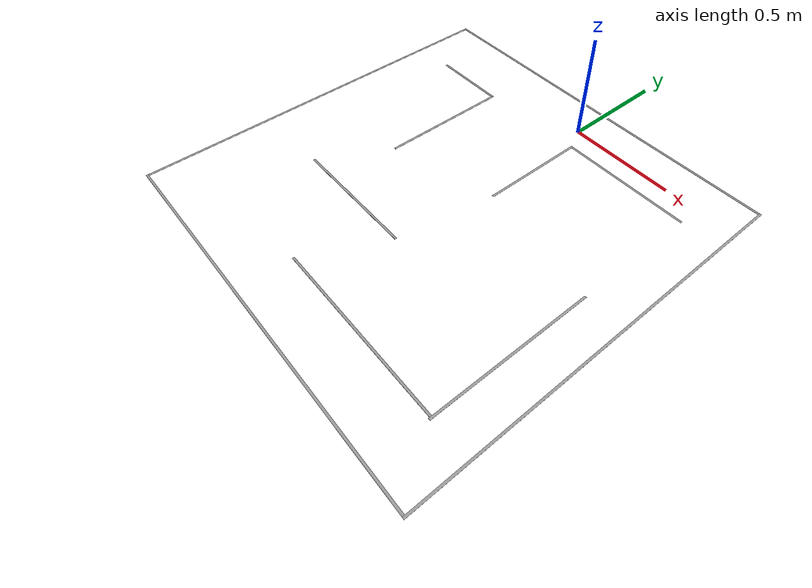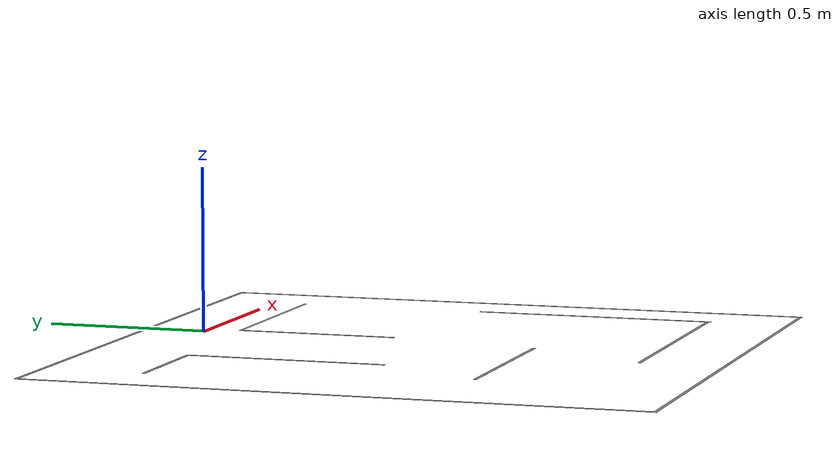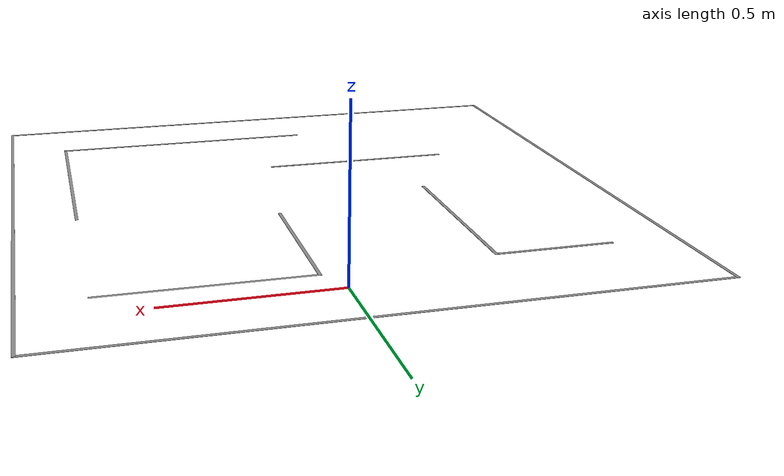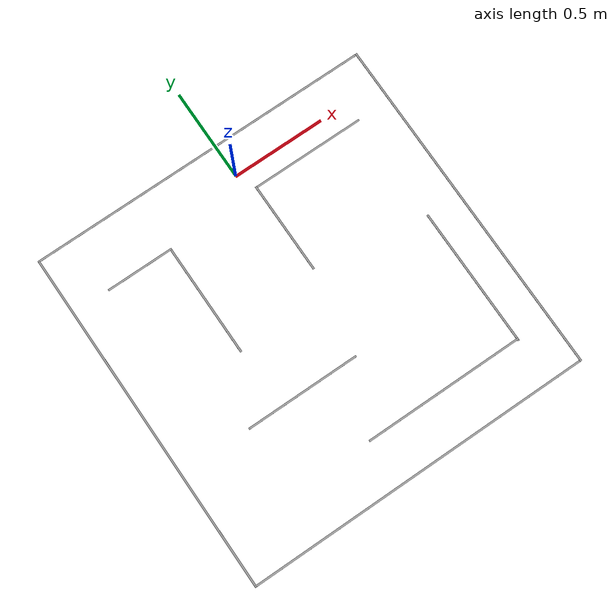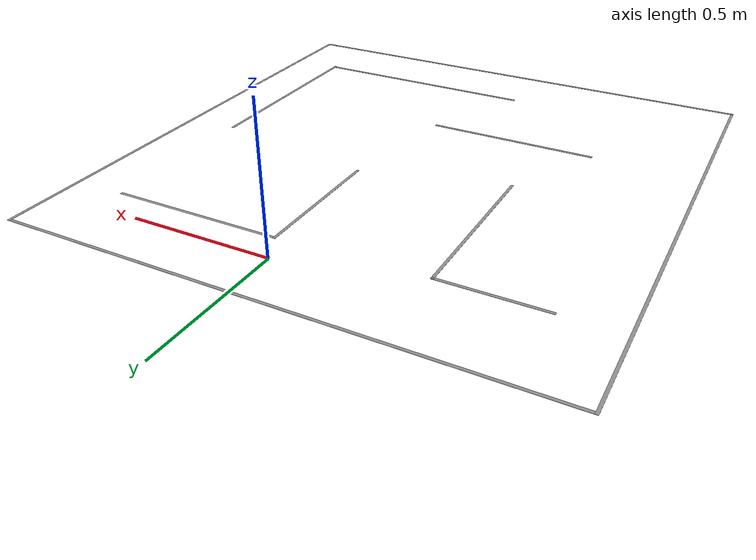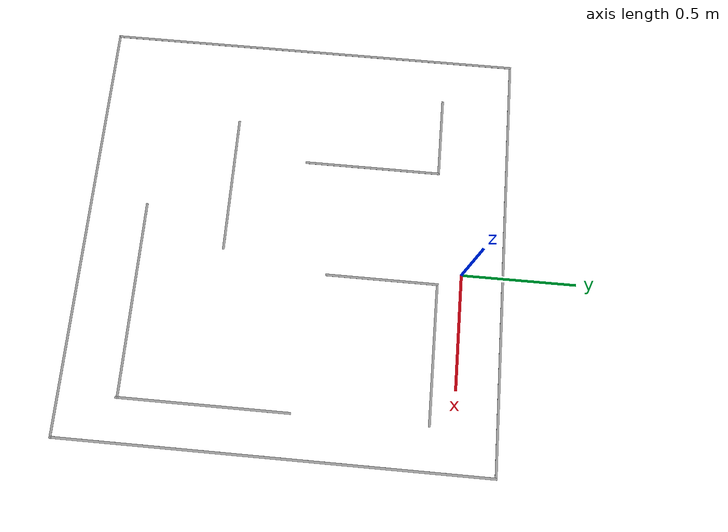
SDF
<?xml version='1.0'?>
<sdf version='1.7'>
  <model name='model_maze'>
    <model name='maze_01'>
      <pose>-0 0 0 0 -0 0</pose>
      <link name='Wall_10'>
        <collision name='Wall_10_Collision'>
          <geometry>
            <box>
              <size>1.86 0.01 0.001</size>
            </box>
          </geometry>
          <pose>0 0 0.0005 0 -0 0</pose>
        </collision>
        <visual name='Wall_10_Visual'>
          <pose>0 0 0.0005 0 -0 0</pose>
          <geometry>
            <box>
              <size>1.86 0.01 0.001</size>
            </box>
          </geometry>
          <material>
            <script>
              <uri>file://media/materials/scripts/gazebo.material</uri>
              <name>Gazebo/Grey</name>
            </script>
            <ambient>1 1 1 1</ambient>
          </material>
          <meta>
            <layer>0</layer>
          </meta>
        </visual>
        <pose>-1.0125 -0.7425 0 0 -0 1.5708</pose>
      </link>
      <link name='Wall_12'>
        <collision name='Wall_12_Collision'>
          <geometry>
            <box>
              <size>0.360287 0.01 0.001</size>
            </box>
          </geometry>
          <pose>0 0 0.0005 0 -0 0</pose>
        </collision>
        <visual name='Wall_12_Visual'>
          <pose>0 0 0.0005 0 -0 0</pose>
          <geometry>
            <box>
              <size>0.360287 0.01 0.001</size>
            </box>
          </geometry>
          <material>
            <script>
              <uri>file://media/materials/scripts/gazebo.material</uri>
              <name>Gazebo/Grey</name>
            </script>
            <ambient>1 1 1 1</ambient>
          </material>
          <meta>
            <layer>0</layer>
          </meta>
        </visual>
        <pose>-0.6345 -0.1235 0 0 -0 0</pose>
      </link>
      <link name='Wall_13'>
        <collision name='Wall_13_Collision'>
          <geometry>
            <box>
              <size>0.60959 0.01 0.001</size>
            </box>
          </geometry>
          <pose>0 0 0.0005 0 -0 0</pose>
        </collision>
        <visual name='Wall_13_Visual'>
          <pose>0 0 0.0005 0 -0 0</pose>
          <geometry>
            <box>
              <size>0.60959 0.01 0.001</size>
            </box>
          </geometry>
          <material>
            <script>
              <uri>file://media/materials/scripts/gazebo.material</uri>
              <name>Gazebo/Grey</name>
            </script>
            <ambient>1 1 1 1</ambient>
          </material>
          <meta>
            <layer>0</layer>
          </meta>
        </visual>
        <pose>-0.4595 -0.4235 0 0 -0 -1.5708</pose>
      </link>
      <link name='Wall_15'>
        <collision name='Wall_15_Collision'>
          <geometry>
            <box>
              <size>0.86 0.01 0.001</size>
            </box>
          </geometry>
          <pose>0 0 0.0005 0 -0 0</pose>
        </collision>
        <visual name='Wall_15_Visual'>
          <pose>0 0 0.0005 0 -0 0</pose>
          <geometry>
            <box>
              <size>0.86 0.01 0.001</size>
            </box>
          </geometry>
          <material>
            <script>
              <uri>file://media/materials/scripts/gazebo.material</uri>
              <name>Gazebo/Grey</name>
            </script>
            <ambient>1 1 1 1</ambient>
          </material>
          <meta>
            <layer>0</layer>
          </meta>
        </visual>
        <pose>0.227213 -1.41605 0 0 -0 0</pose>
      </link>
      <link name='Wall_18'>
        <collision name='Wall_18_Collision'>
          <geometry>
            <box>
              <size>0.61 0.01 0.001</size>
            </box>
          </geometry>
          <pose>0 0 0.0005 0 -0 0</pose>
        </collision>
        <visual name='Wall_18_Visual'>
          <pose>0 0 0.0005 0 -0 0</pose>
          <geometry>
            <box>
              <size>0.61 0.01 0.001</size>
            </box>
          </geometry>
          <material>
            <script>
              <uri>file://media/materials/scripts/gazebo.material</uri>
              <name>Gazebo/Grey</name>
            </script>
            <ambient>1 1 1 1</ambient>
          </material>
          <meta>
            <layer>0</layer>
          </meta>
        </visual>
        <pose>-0.328904 -1.051 0 0 -0 0</pose>
      </link>
      <link name='Wall_20'>
        <collision name='Wall_20_Collision'>
          <geometry>
            <box>
              <size>0.745 0.01 0.001</size>
            </box>
          </geometry>
          <pose>0 0 0.0005 0 -0 0</pose>
        </collision>
        <visual name='Wall_20_Visual'>
          <pose>0 0 0.0005 0 -0 0</pose>
          <geometry>
            <box>
              <size>0.745 0.01 0.001</size>
            </box>
          </geometry>
          <material>
            <script>
              <uri>file://media/materials/scripts/gazebo.material</uri>
              <name>Gazebo/Grey</name>
            </script>
            <ambient>1 1 1 1</ambient>
          </material>
          <meta>
            <layer>0</layer>
          </meta>
        </visual>
        <pose>0.652213 -1.05352 0 0 -0 1.5708</pose>
      </link>
      <link name='Wall_22'>
        <collision name='Wall_22_Collision'>
          <geometry>
            <box>
              <size>0.495 0.01 0.001</size>
            </box>
          </geometry>
          <pose>0 0 0.0005 0 -0 0</pose>
        </collision>
        <visual name='Wall_22_Visual'>
          <pose>0 0 0.0005 0 -0 0</pose>
          <geometry>
            <box>
              <size>0.495 0.01 0.001</size>
            </box>
          </geometry>
          <material>
            <script>
              <uri>file://media/materials/scripts/gazebo.material</uri>
              <name>Gazebo/Grey</name>
            </script>
            <ambient>1 1 1 1</ambient>
          </material>
          <meta>
            <layer>0</layer>
          </meta>
        </visual>
        <pose>0.0505 -0.344 0 0 -0 1.5708</pose>
      </link>
      <link name='Wall_23'>
        <collision name='Wall_23_Collision'>
          <geometry>
            <box>
              <size>0.61 0.01 0</size>
            </box>
          </geometry>
          <pose>0 0 0.0005 0 -0 0</pose>
        </collision>
        <visual name='Wall_23_Visual'>
          <pose>0 0 0.0005 0 -0 0</pose>
          <geometry>
            <box>
              <size>0.61 0.01 0</size>
            </box>
          </geometry>
          <material>
            <script>
              <uri>file://media/materials/scripts/gazebo.material</uri>
              <name>Gazebo/Grey</name>
            </script>
            <ambient>1 1 1 1</ambient>
          </material>
          <meta>
            <layer>0</layer>
          </meta>
        </visual>
        <pose>0.3505 -0.1015 0 0 -0 0</pose>
      </link>
      <link name='Wall_7'>
        <collision name='Wall_7_Collision'>
          <geometry>
            <box>
              <size>1.86 0.01 0.001</size>
            </box>
          </geometry>
          <pose>0 0 0.0005 0 -0 0</pose>
        </collision>
        <visual name='Wall_7_Visual'>
          <pose>0 0 0.0005 0 -0 0</pose>
          <geometry>
            <box>
              <size>1.86 0.01 0.001</size>
            </box>
          </geometry>
          <material>
            <script>
              <uri>file://media/materials/scripts/gazebo.material</uri>
              <name>Gazebo/Grey</name>
            </script>
            <ambient>1 1 1 1</ambient>
          </material>
          <meta>
            <layer>0</layer>
          </meta>
        </visual>
        <pose>-0.0875 0.1825 0 0 -0 0</pose>
      </link>
      <link name='Wall_8'>
        <collision name='Wall_8_Collision'>
          <geometry>
            <box>
              <size>1.86 0.01 0.001</size>
            </box>
          </geometry>
          <pose>0 0 0.0005 0 -0 0</pose>
        </collision>
        <visual name='Wall_8_Visual'>
          <pose>0 0 0.0005 0 -0 0</pose>
          <geometry>
            <box>
              <size>1.86 0.01 0.001</size>
            </box>
          </geometry>
          <material>
            <script>
              <uri>file://media/materials/scripts/gazebo.material</uri>
              <name>Gazebo/Grey</name>
            </script>
            <ambient>1 1 1 1</ambient>
          </material>
          <meta>
            <layer>0</layer>
          </meta>
        </visual>
        <pose>0.8375 -0.7425 0 0 -0 -1.5708</pose>
      </link>
      <link name='Wall_9'>
        <collision name='Wall_9_Collision'>
          <geometry>
            <box>
              <size>1.86 0.01 0.001</size>
            </box>
          </geometry>
          <pose>0 0 0.0005 0 -0 0</pose>
        </collision>
        <visual name='Wall_9_Visual'>
          <pose>0 0 0.0005 0 -0 0</pose>
          <geometry>
            <box>
              <size>1.86 0.01 0.001</size>
            </box>
          </geometry>
          <material>
            <script>
              <uri>file://media/materials/scripts/gazebo.material</uri>
              <name>Gazebo/Grey</name>
            </script>
            <ambient>1 1 1 1</ambient>
          </material>
          <meta>
            <layer>0</layer>
          </meta>
        </visual>
        <pose>-0.0875 -1.6675 0 0 -0 3.14159</pose>
      </link>
      <static>1</static>
    </model>
    <static>0</static>
    <allow_auto_disable>1</allow_auto_disable>
  </model>
</sdf>
